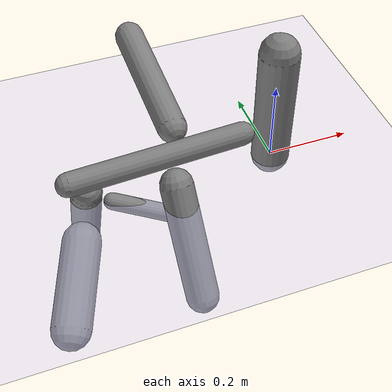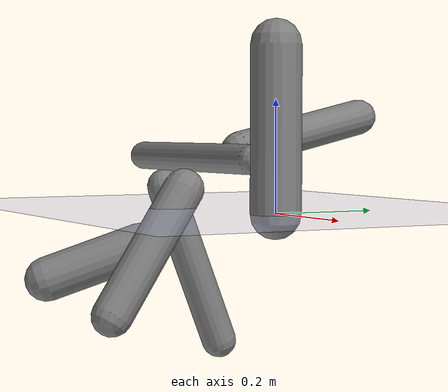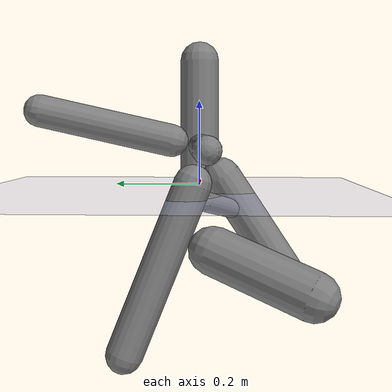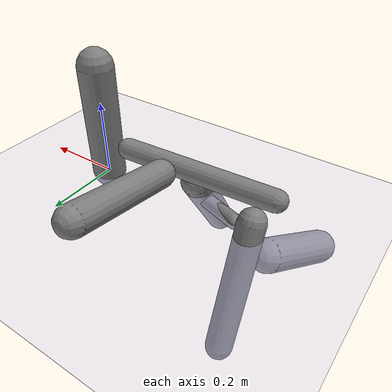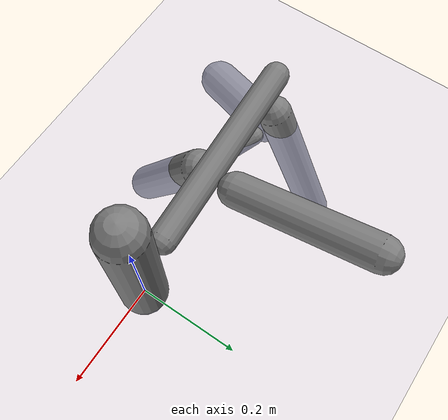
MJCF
<?xml version='1.0' encoding='UTF-8'?>
<mujoco model="robot_model">
  <worldbody>
    <light name="light" pos="0 -3 10" dir="0 0.5 -1" diffuse=".8 .8 .8" specular="0.1 0.1 0.1"/>
    <geom name="floor" type="plane" size="10.0 10.0 0.1" pos="0 0 0" rgba="0.8 0.8 1 1" contype="2" conaffinity="1"/>
    <body name="limb0" pos="0 0 0">
      <geom name="limb0_geom" type="capsule" fromto="0 0 0 0 0 0.29533778895493656" size="0.04557471077333014" density="643.8968203578066" contype="1" conaffinity="2"/>
      <site type="sphere" size="0.01" name="limb0_site0" pos="-0.07725980271453263 -0.003918018305750358 0.09332821379316573" quat="0.7071067811865476 0.035812953632730245 -0.7061992865700869 0.0"/>
      <freejoint name="limb0_root"/>
      <body name="limb1" pos="-0.07725980271453263 -0.003918018305750358 0.09332821379316573" quat="0.7071067811865476 0.035812953632730245 -0.7061992865700869 0.0">
        <geom name="limb1_geom" type="capsule" fromto="0 0 0 0 0 0.4119779083954327" size="0.027784373909289378" density="1094.7449235337838" contype="1" conaffinity="2"/>
        <site type="sphere" size="0.01" name="limb1_site0" pos="-0.06433683832915783 0.021865701990363206 0.3707577856502461" quat="0.7071067811865476 -0.2275373039935 -0.6694974049922594 0.0"/>
        <site type="sphere" size="0.01" name="limb1_site1" pos="0.011359012818854923 0.06579533282582826 0.14662549990165907" quat="0.7071067811865476 -0.6967989329630775 0.12029649629775836 0.0"/>
        <site type="sphere" size="0.01" name="limb1_site2" pos="-0.057337120889883963 -0.04215622474672176 0.17895409510660149" quat="0.7071067811865476 0.4188612291100694 -0.5696975256646301 0.0"/>
        <body name="limb2" pos="-0.06433683832915783 0.021865701990363206 0.3707577856502461" quat="0.7071067811865476 -0.2275373039935 -0.6694974049922594 0.0">
          <geom name="limb2_geom" type="capsule" fromto="0 0 0 0 0 0.35263194111474133" size="0.03616662085696526" density="844.5074894288166" contype="1" conaffinity="2"/>
          <site type="sphere" size="0.01" name="limb2_site0" pos="0.008333072797538978 -0.08579353113988168 0.09963736374035148" quat="0.7071067811865476 0.703794733424627 0.06835914864711376 0.0"/>
          <site type="sphere" size="0.01" name="limb2_site1" pos="-0.05878034293608309 -0.012841088336362869 0.026954840323301168" quat="0.7071067811865476 0.15091458538187963 -0.6908145828795272 0.0"/>
          <body name="limb3" pos="0.008333072797538978 -0.08579353113988168 0.09963736374035148" quat="0.7071067811865476 0.703794733424627 0.06835914864711376 0.0">
            <geom name="limb3_geom" type="capsule" fromto="0 0 0 0 0 0.20587440072907823" size="0.04603065339053593" density="1089.820416514438" contype="1" conaffinity="2"/>
            <joint name="joint_limb2_limb3_0" type="hinge" axis="1 0 0" range="-76.8184141901732 76.8184141901732" damping="5.0"/>
          </body>
          <body name="limb4" pos="-0.05878034293608309 -0.012841088336362869 0.026954840323301168" quat="0.7071067811865476 0.15091458538187963 -0.6908145828795272 0.0">
            <geom name="limb4_geom" type="capsule" fromto="0 0 0 0 0 0.1338826525099304" size="0.02" density="400.0" contype="1" conaffinity="2"/>
            <joint name="joint_limb2_limb4_0" type="hinge" axis="0 0 1" range="-24.615583460351402 24.615583460351402" damping="5.0"/>
          </body>
          <joint name="joint_limb1_limb2_0" type="hinge" axis="1 0 0" range="-60.6612845033848 60.6612845033848" damping="5.0"/>
        </body>
        <body name="limb5" pos="0.011359012818854923 0.06579533282582826 0.14662549990165907" quat="0.7071067811865476 -0.6967989329630775 0.12029649629775836 0.0">
          <geom name="limb5_geom" type="capsule" fromto="0 0 0 0 0 0.28928158855542757" size="0.03498427886939431" density="573.2226405414596" contype="1" conaffinity="2"/>
          <joint name="joint_limb1_limb5_0" type="hinge" axis="1 0 0" range="-48.18281063347258 48.18281063347258" damping="5.0"/>
        </body>
        <body name="limb6" pos="-0.057337120889883963 -0.04215622474672176 0.17895409510660149" quat="0.7071067811865476 0.4188612291100694 -0.5696975256646301 0.0">
          <geom name="limb6_geom" type="capsule" fromto="0 0 0 0 0 0.27821115182625505" size="0.03938228061962103" density="867.0301287885715" contype="1" conaffinity="2"/>
          <joint name="joint_limb1_limb6_0" type="hinge" axis="0 1 0" range="-118.94622450493522 118.94622450493522" damping="5.0"/>
        </body>
        <joint name="joint_limb0_limb1_0" type="hinge" axis="0 1 0" range="-79.43746025127588 79.43746025127588" damping="5.0"/>
      </body>
    </body>
  </worldbody>
  <actuator>
    <position name="position_actuator_joint_limb0_limb1_0" joint="joint_limb0_limb1_0" gear="1.5835672608966855" inheritrange="1" forcerange="-5.960783523172352 5.960783523172352" forcelimited="true" kp="100.0"/>
    <position name="position_actuator_joint_limb1_limb2_0" joint="joint_limb1_limb2_0" gear="0.9597608262960533" inheritrange="1" forcerange="-6.955455583751064 6.955455583751064" forcelimited="true" kp="100.0"/>
    <position name="position_actuator_joint_limb2_limb3_0" joint="joint_limb2_limb3_0" gear="1.4426881968183625" inheritrange="1" forcerange="-9.693587687008968 9.693587687008968" forcelimited="true" kp="100.0"/>
    <position name="position_actuator_joint_limb2_limb4_0" joint="joint_limb2_limb4_0" gear="1.7178107833755385" inheritrange="1" forcerange="-0.40350444933123225 0.40350444933123225" forcelimited="true" kp="100.0"/>
    <position name="position_actuator_joint_limb1_limb5_0" joint="joint_limb1_limb5_0" gear="1.8903065910928873" inheritrange="1" forcerange="-3.701982454396224 3.701982454396224" forcelimited="true" kp="100.0"/>
    <position name="position_actuator_joint_limb1_limb6_0" joint="joint_limb1_limb6_0" gear="1.3364375162590154" inheritrange="1" forcerange="-6.98581980100605 6.98581980100605" forcelimited="true" kp="100.0"/>
  </actuator>
  <contact>
    <pair geom1="limb0_geom" geom2="limb1_geom"/>
    <pair geom1="limb1_geom" geom2="limb2_geom"/>
    <pair geom1="limb2_geom" geom2="limb3_geom"/>
    <pair geom1="limb2_geom" geom2="limb4_geom"/>
    <pair geom1="limb1_geom" geom2="limb5_geom"/>
    <pair geom1="limb1_geom" geom2="limb6_geom"/>
  </contact>
</mujoco>
